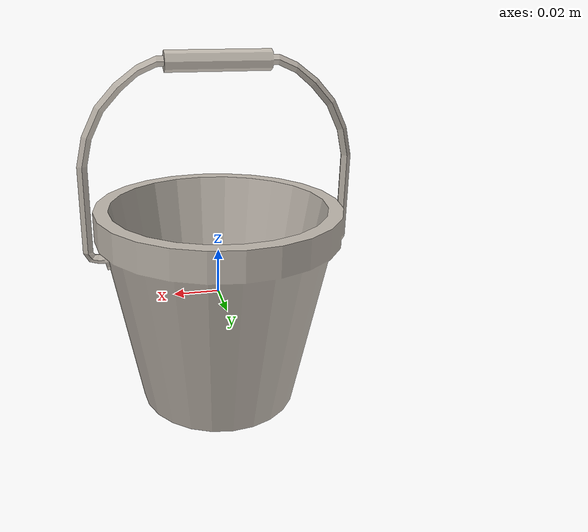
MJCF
<mujoco model="mug_1">
  <asset>
    <mesh file="meshes/bucket_1.obj" name="bucket_mesh" scale="1.0 1.0 1.0"/>
    <texture type="2d" file="../textures/Bucket_baseColor.png" name="tex-ceramic"/>
    <material name="ceramic" reflectance="0.3" texrepeat="3 3" texture="tex-ceramic" texuniform="true"/>
  </asset>
  <worldbody>
    <body>
      <body name="object">
        <geom pos="0 0 0" mesh="bucket_mesh" type="mesh" solimp="0.998 0.998 0.001" solref="0.001 1" density="100" friction="0.95 0.3 0.1" material="ceramic" contype="0" conaffinity="0" group="1"/>
        <geom pos="0 0 0" mesh="bucket_mesh" type="mesh" solimp="0.998 0.998 0.001" solref="0.001 1" density="100" friction="0.95 0.3 0.1" material="ceramic" group="0"/>
      </body>
      <site rgba="0 0 0 0" size="0.005" pos="0 0 0" name="bottom_site"/>
      <site rgba="0 0 0 0" size="0.005" pos="0 0.00 0.156" name="top_site"/>
      <site rgba="0 0 0 0" size="0.005" pos="0.048 0.051 0" name="horizontal_radius_site"/>
    </body>
  </worldbody>
</mujoco>
